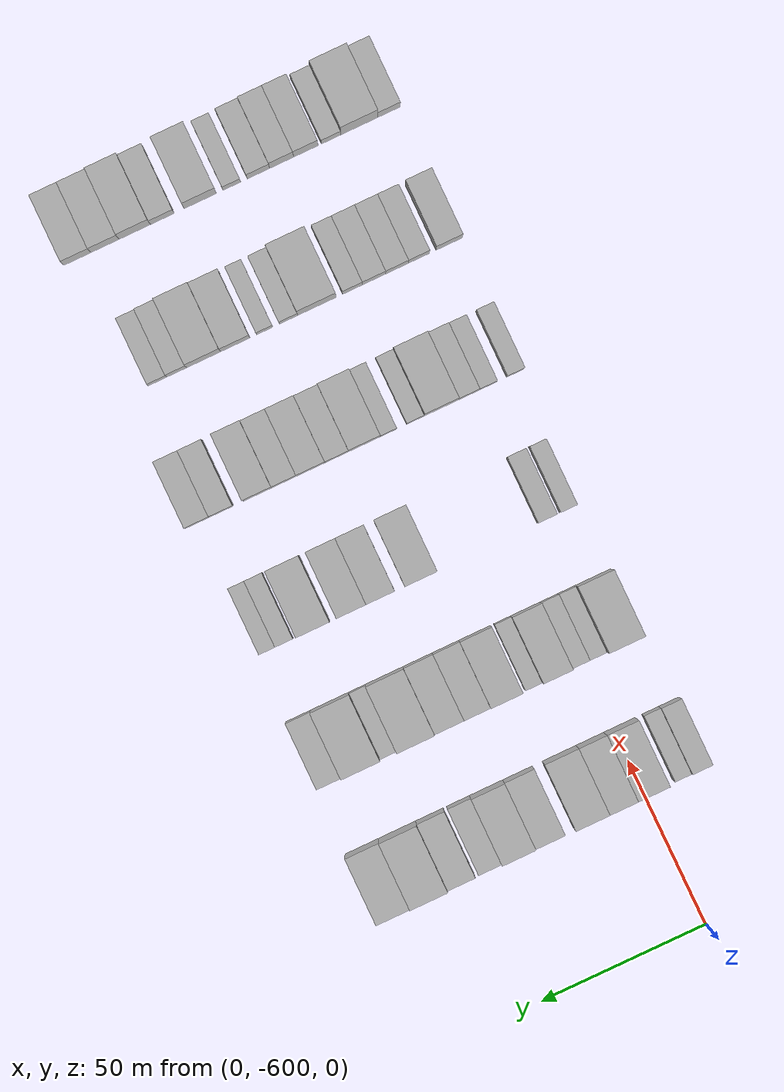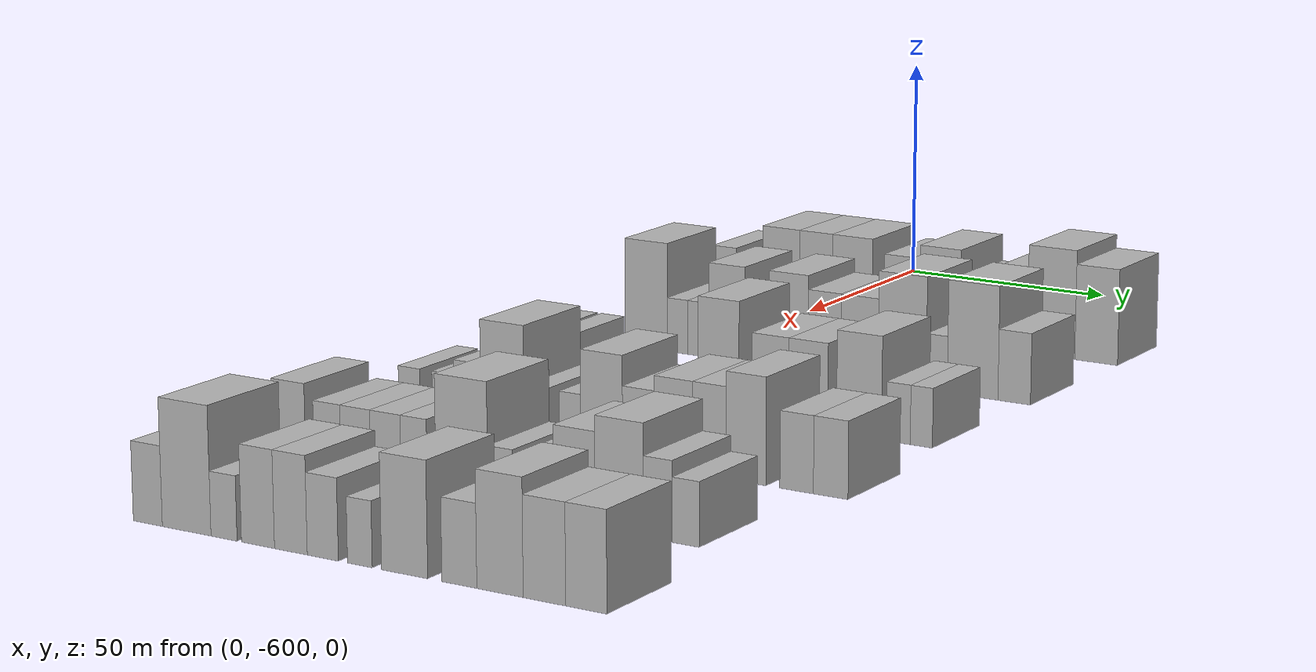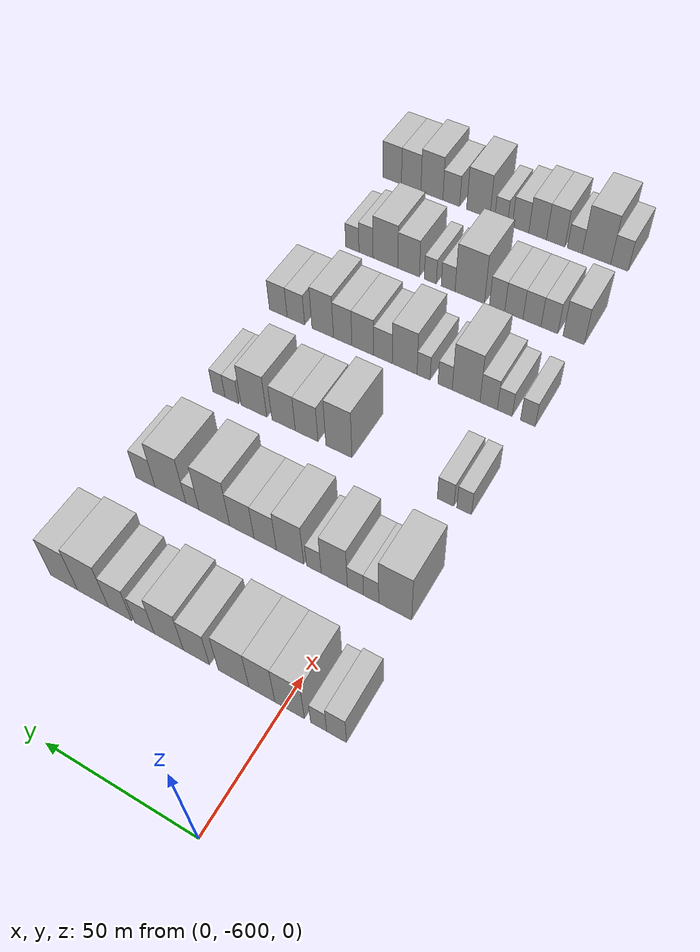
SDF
<sdf version="1.6">
 <world name="default">
  <model name="building_1">
   <static>1</static>
   <pose>50.0000 -616.9016 0 0.000000 0.000000 0.000000</pose>
   <link name="link">
    <pose>0 0 7.50 0 0 0</pose>
    <collision name="collision"><geometry><box><size>20.0000 6.1968 15.0000</size></box></geometry></collision>
    <visual name="visual">
     <cast_shadows>0</cast_shadows>
     <geometry><box><size>20.0000 6.1968 15.0000</size></box></geometry>
     <material>
      <script>
       <uri>model://HANNAS_wall/materials/scripts</uri>
       <uri>model://HANNAS_wall/materials/textures</uri>
       <name>vrc/HANNAS_wall</name>
      </script>
     </material>
    </visual>
   </link>
  </model>
  <model name="building_2">
   <static>1</static>
   <pose>50.0000 -611.2636 0 0.000000 0.000000 0.000000</pose>
   <link name="link">
    <pose>0 0 6.00 0 0 0</pose>
    <collision name="collision"><geometry><box><size>20.0000 5.0791 12.0000</size></box></geometry></collision>
    <visual name="visual">
     <cast_shadows>0</cast_shadows>
     <geometry><box><size>20.0000 5.0791 12.0000</size></box></geometry>
     <material>
      <script>
       <uri>model://HANNAS_wall/materials/scripts</uri>
       <uri>model://HANNAS_wall/materials/textures</uri>
       <name>vrc/HANNAS_wall</name>
      </script>
     </material>
    </visual>
   </link>
  </model>
  <model name="building_3">
   <static>1</static>
   <pose>50.0000 -601.9387 0 0.000000 0.000000 0.000000</pose>
   <link name="link">
    <pose>0 0 10.50 0 0 0</pose>
    <collision name="collision"><geometry><box><size>20.0000 9.5707 21.0000</size></box></geometry></collision>
    <visual name="visual">
     <cast_shadows>0</cast_shadows>
     <geometry><box><size>20.0000 9.5707 21.0000</size></box></geometry>
     <material>
      <script>
       <uri>model://HANNAS_wall/materials/scripts</uri>
       <uri>model://HANNAS_wall/materials/textures</uri>
       <name>vrc/HANNAS_wall</name>
      </script>
     </material>
    </visual>
   </link>
  </model>
  <model name="building_4">
   <static>1</static>
   <pose>50.0000 -592.8870 0 0.000000 0.000000 0.000000</pose>
   <link name="link">
    <pose>0 0 10.50 0 0 0</pose>
    <collision name="collision"><geometry><box><size>20.0000 8.5327 21.0000</size></box></geometry></collision>
    <visual name="visual">
     <cast_shadows>0</cast_shadows>
     <geometry><box><size>20.0000 8.5327 21.0000</size></box></geometry>
     <material>
      <script>
       <uri>model://HANNAS_wall/materials/scripts</uri>
       <uri>model://HANNAS_wall/materials/textures</uri>
       <name>vrc/HANNAS_wall</name>
      </script>
     </material>
    </visual>
   </link>
  </model>
  <model name="building_5">
   <static>1</static>
   <pose>50.0000 -583.4798 0 0.000000 0.000000 0.000000</pose>
   <link name="link">
    <pose>0 0 10.50 0 0 0</pose>
    <collision name="collision"><geometry><box><size>20.0000 10.2817 21.0000</size></box></geometry></collision>
    <visual name="visual">
     <cast_shadows>0</cast_shadows>
     <geometry><box><size>20.0000 10.2817 21.0000</size></box></geometry>
     <material>
      <script>
       <uri>model://HANNAS_wall/materials/scripts</uri>
       <uri>model://HANNAS_wall/materials/textures</uri>
       <name>vrc/HANNAS_wall</name>
      </script>
     </material>
    </visual>
   </link>
  </model>
  <model name="building_6">
   <static>1</static>
   <pose>50.0000 -570.8567 0 0.000000 0.000000 0.000000</pose>
   <link name="link">
    <pose>0 0 9.00 0 0 0</pose>
    <collision name="collision"><geometry><box><size>20.0000 8.9645 18.0000</size></box></geometry></collision>
    <visual name="visual">
     <cast_shadows>0</cast_shadows>
     <geometry><box><size>20.0000 8.9645 18.0000</size></box></geometry>
     <material>
      <script>
       <uri>model://HANNAS_wall/materials/scripts</uri>
       <uri>model://HANNAS_wall/materials/textures</uri>
       <name>vrc/HANNAS_wall</name>
      </script>
     </material>
    </visual>
   </link>
  </model>
  <model name="building_7">
   <static>1</static>
   <pose>50.0000 -561.2951 0 0.000000 0.000000 0.000000</pose>
   <link name="link">
    <pose>0 0 10.50 0 0 0</pose>
    <collision name="collision"><geometry><box><size>20.0000 10.1586 21.0000</size></box></geometry></collision>
    <visual name="visual">
     <cast_shadows>0</cast_shadows>
     <geometry><box><size>20.0000 10.1586 21.0000</size></box></geometry>
     <material>
      <script>
       <uri>model://HANNAS_wall/materials/scripts</uri>
       <uri>model://HANNAS_wall/materials/textures</uri>
       <name>vrc/HANNAS_wall</name>
      </script>
     </material>
    </visual>
   </link>
  </model>
  <model name="building_8">
   <static>1</static>
   <pose>50.0000 -552.7246 0 0.000000 0.000000 0.000000</pose>
   <link name="link">
    <pose>0 0 7.50 0 0 0</pose>
    <collision name="collision"><geometry><box><size>20.0000 6.9825 15.0000</size></box></geometry></collision>
    <visual name="visual">
     <cast_shadows>0</cast_shadows>
     <geometry><box><size>20.0000 6.9825 15.0000</size></box></geometry>
     <material>
      <script>
       <uri>model://HANNAS_wall/materials/scripts</uri>
       <uri>model://HANNAS_wall/materials/textures</uri>
       <name>vrc/HANNAS_wall</name>
      </script>
     </material>
    </visual>
   </link>
  </model>
  <model name="building_9">
   <static>1</static>
   <pose>50.0000 -544.0356 0 0.000000 0.000000 0.000000</pose>
   <link name="link">
    <pose>0 0 9.00 0 0 0</pose>
    <collision name="collision"><geometry><box><size>20.0000 8.3956 18.0000</size></box></geometry></collision>
    <visual name="visual">
     <cast_shadows>0</cast_shadows>
     <geometry><box><size>20.0000 8.3956 18.0000</size></box></geometry>
     <material>
      <script>
       <uri>model://HANNAS_wall/materials/scripts</uri>
       <uri>model://HANNAS_wall/materials/textures</uri>
       <name>vrc/HANNAS_wall</name>
      </script>
     </material>
    </visual>
   </link>
  </model>
  <model name="building_10">
   <static>1</static>
   <pose>50.0000 -534.1240 0 0.000000 0.000000 0.000000</pose>
   <link name="link">
    <pose>0 0 12.00 0 0 0</pose>
    <collision name="collision"><geometry><box><size>20.0000 11.4277 24.0000</size></box></geometry></collision>
    <visual name="visual">
     <cast_shadows>0</cast_shadows>
     <geometry><box><size>20.0000 11.4277 24.0000</size></box></geometry>
     <material>
      <script>
       <uri>model://HANNAS_wall/materials/scripts</uri>
       <uri>model://HANNAS_wall/materials/textures</uri>
       <name>vrc/HANNAS_wall</name>
      </script>
     </material>
    </visual>
   </link>
  </model>
  <model name="building_11">
   <static>1</static>
   <pose>50.0000 -523.3517 0 0.000000 0.000000 0.000000</pose>
   <link name="link">
    <pose>0 0 10.50 0 0 0</pose>
    <collision name="collision"><geometry><box><size>20.0000 10.1170 21.0000</size></box></geometry></collision>
    <visual name="visual">
     <cast_shadows>0</cast_shadows>
     <geometry><box><size>20.0000 10.1170 21.0000</size></box></geometry>
     <material>
      <script>
       <uri>model://HANNAS_wall/materials/scripts</uri>
       <uri>model://HANNAS_wall/materials/textures</uri>
       <name>vrc/HANNAS_wall</name>
      </script>
     </material>
    </visual>
   </link>
  </model>
  <model name="building_134">
   <static>1</static>
   <pose>90.0000 -612.5213 0 0.000000 0.000000 0.000000</pose>
   <link name="link">
    <pose>0 0 12.00 0 0 0</pose>
    <collision name="collision"><geometry><box><size>20.0000 10.9574 24.0000</size></box></geometry></collision>
    <visual name="visual">
     <cast_shadows>0</cast_shadows>
     <geometry><box><size>20.0000 10.9574 24.0000</size></box></geometry>
     <material>
      <script>
       <uri>model://HANNAS_wall/materials/scripts</uri>
       <uri>model://HANNAS_wall/materials/textures</uri>
       <name>vrc/HANNAS_wall</name>
      </script>
     </material>
    </visual>
   </link>
  </model>
  <model name="building_135">
   <static>1</static>
   <pose>90.0000 -604.4865 0 0.000000 0.000000 0.000000</pose>
   <link name="link">
    <pose>0 0 6.00 0 0 0</pose>
    <collision name="collision"><geometry><box><size>20.0000 5.1121 12.0000</size></box></geometry></collision>
    <visual name="visual">
     <cast_shadows>0</cast_shadows>
     <geometry><box><size>20.0000 5.1121 12.0000</size></box></geometry>
     <material>
      <script>
       <uri>model://HANNAS_wall/materials/scripts</uri>
       <uri>model://HANNAS_wall/materials/textures</uri>
       <name>vrc/HANNAS_wall</name>
      </script>
     </material>
    </visual>
   </link>
  </model>
  <model name="building_136">
   <static>1</static>
   <pose>90.0000 -599.1985 0 0.000000 0.000000 0.000000</pose>
   <link name="link">
    <pose>0 0 6.00 0 0 0</pose>
    <collision name="collision"><geometry><box><size>20.0000 5.4640 12.0000</size></box></geometry></collision>
    <visual name="visual">
     <cast_shadows>0</cast_shadows>
     <geometry><box><size>20.0000 5.4640 12.0000</size></box></geometry>
     <material>
      <script>
       <uri>model://HANNAS_wall/materials/scripts</uri>
       <uri>model://HANNAS_wall/materials/textures</uri>
       <name>vrc/HANNAS_wall</name>
      </script>
     </material>
    </visual>
   </link>
  </model>
  <model name="building_137">
   <static>1</static>
   <pose>90.0000 -591.9716 0 0.000000 0.000000 0.000000</pose>
   <link name="link">
    <pose>0 0 10.50 0 0 0</pose>
    <collision name="collision"><geometry><box><size>20.0000 8.9897 21.0000</size></box></geometry></collision>
    <visual name="visual">
     <cast_shadows>0</cast_shadows>
     <geometry><box><size>20.0000 8.9897 21.0000</size></box></geometry>
     <material>
      <script>
       <uri>model://HANNAS_wall/materials/scripts</uri>
       <uri>model://HANNAS_wall/materials/textures</uri>
       <name>vrc/HANNAS_wall</name>
      </script>
     </material>
    </visual>
   </link>
  </model>
  <model name="building_138">
   <static>1</static>
   <pose>90.0000 -584.9315 0 0.000000 0.000000 0.000000</pose>
   <link name="link">
    <pose>0 0 6.00 0 0 0</pose>
    <collision name="collision"><geometry><box><size>20.0000 5.0904 12.0000</size></box></geometry></collision>
    <visual name="visual">
     <cast_shadows>0</cast_shadows>
     <geometry><box><size>20.0000 5.0904 12.0000</size></box></geometry>
     <material>
      <script>
       <uri>model://HANNAS_wall/materials/scripts</uri>
       <uri>model://HANNAS_wall/materials/textures</uri>
       <name>vrc/HANNAS_wall</name>
      </script>
     </material>
    </visual>
   </link>
  </model>
  <model name="building_139">
   <static>1</static>
   <pose>90.0000 -576.5448 0 0.000000 0.000000 0.000000</pose>
   <link name="link">
    <pose>0 0 10.50 0 0 0</pose>
    <collision name="collision"><geometry><box><size>20.0000 9.6830 21.0000</size></box></geometry></collision>
    <visual name="visual">
     <cast_shadows>0</cast_shadows>
     <geometry><box><size>20.0000 9.6830 21.0000</size></box></geometry>
     <material>
      <script>
       <uri>model://HANNAS_wall/materials/scripts</uri>
       <uri>model://HANNAS_wall/materials/textures</uri>
       <name>vrc/HANNAS_wall</name>
      </script>
     </material>
    </visual>
   </link>
  </model>
  <model name="building_140">
   <static>1</static>
   <pose>90.0000 -567.6874 0 0.000000 0.000000 0.000000</pose>
   <link name="link">
    <pose>0 0 9.00 0 0 0</pose>
    <collision name="collision"><geometry><box><size>20.0000 8.0319 18.0000</size></box></geometry></collision>
    <visual name="visual">
     <cast_shadows>0</cast_shadows>
     <geometry><box><size>20.0000 8.0319 18.0000</size></box></geometry>
     <material>
      <script>
       <uri>model://HANNAS_wall/materials/scripts</uri>
       <uri>model://HANNAS_wall/materials/textures</uri>
       <name>vrc/HANNAS_wall</name>
      </script>
     </material>
    </visual>
   </link>
  </model>
  <model name="building_141">
   <static>1</static>
   <pose>90.0000 -559.2264 0 0.000000 0.000000 0.000000</pose>
   <link name="link">
    <pose>0 0 9.00 0 0 0</pose>
    <collision name="collision"><geometry><box><size>20.0000 8.8902 18.0000</size></box></geometry></collision>
    <visual name="visual">
     <cast_shadows>0</cast_shadows>
     <geometry><box><size>20.0000 8.8902 18.0000</size></box></geometry>
     <material>
      <script>
       <uri>model://HANNAS_wall/materials/scripts</uri>
       <uri>model://HANNAS_wall/materials/textures</uri>
       <name>vrc/HANNAS_wall</name>
      </script>
     </material>
    </visual>
   </link>
  </model>
  <model name="building_142">
   <static>1</static>
   <pose>90.0000 -549.0619 0 0.000000 0.000000 0.000000</pose>
   <link name="link">
    <pose>0 0 12.00 0 0 0</pose>
    <collision name="collision"><geometry><box><size>20.0000 11.4388 24.0000</size></box></geometry></collision>
    <visual name="visual">
     <cast_shadows>0</cast_shadows>
     <geometry><box><size>20.0000 11.4388 24.0000</size></box></geometry>
     <material>
      <script>
       <uri>model://HANNAS_wall/materials/scripts</uri>
       <uri>model://HANNAS_wall/materials/textures</uri>
       <name>vrc/HANNAS_wall</name>
      </script>
     </material>
    </visual>
   </link>
  </model>
  <model name="building_143">
   <static>1</static>
   <pose>90.0000 -540.8584 0 0.000000 0.000000 0.000000</pose>
   <link name="link">
    <pose>0 0 6.00 0 0 0</pose>
    <collision name="collision"><geometry><box><size>20.0000 4.9681 12.0000</size></box></geometry></collision>
    <visual name="visual">
     <cast_shadows>0</cast_shadows>
     <geometry><box><size>20.0000 4.9681 12.0000</size></box></geometry>
     <material>
      <script>
       <uri>model://HANNAS_wall/materials/scripts</uri>
       <uri>model://HANNAS_wall/materials/textures</uri>
       <name>vrc/HANNAS_wall</name>
      </script>
     </material>
    </visual>
   </link>
  </model>
  <model name="building_144">
   <static>1</static>
   <pose>90.0000 -532.4957 0 0.000000 0.000000 0.000000</pose>
   <link name="link">
    <pose>0 0 12.00 0 0 0</pose>
    <collision name="collision"><geometry><box><size>20.0000 11.7573 24.0000</size></box></geometry></collision>
    <visual name="visual">
     <cast_shadows>0</cast_shadows>
     <geometry><box><size>20.0000 11.7573 24.0000</size></box></geometry>
     <material>
      <script>
       <uri>model://HANNAS_wall/materials/scripts</uri>
       <uri>model://HANNAS_wall/materials/textures</uri>
       <name>vrc/HANNAS_wall</name>
      </script>
     </material>
    </visual>
   </link>
  </model>
  <model name="building_145">
   <static>1</static>
   <pose>90.0000 -522.8952 0 0.000000 0.000000 0.000000</pose>
   <link name="link">
    <pose>0 0 7.50 0 0 0</pose>
    <collision name="collision"><geometry><box><size>20.0000 7.4438 15.0000</size></box></geometry></collision>
    <visual name="visual">
     <cast_shadows>0</cast_shadows>
     <geometry><box><size>20.0000 7.4438 15.0000</size></box></geometry>
     <material>
      <script>
       <uri>model://HANNAS_wall/materials/scripts</uri>
       <uri>model://HANNAS_wall/materials/textures</uri>
       <name>vrc/HANNAS_wall</name>
      </script>
     </material>
    </visual>
   </link>
  </model>
  <model name="building_286">
   <static>1</static>
   <pose>130.0000 -614.4628 0 0.000000 0.000000 0.000000</pose>
   <link name="link">
    <pose>0 0 6.00 0 0 0</pose>
    <collision name="collision"><geometry><box><size>20.0000 5.0744 12.0000</size></box></geometry></collision>
    <visual name="visual">
     <cast_shadows>0</cast_shadows>
     <geometry><box><size>20.0000 5.0744 12.0000</size></box></geometry>
     <material>
      <script>
       <uri>model://HANNAS_wall/materials/scripts</uri>
       <uri>model://HANNAS_wall/materials/textures</uri>
       <name>vrc/HANNAS_wall</name>
      </script>
     </material>
    </visual>
   </link>
  </model>
  <model name="building_287">
   <static>1</static>
   <pose>130.0000 -608.0292 0 0.000000 0.000000 0.000000</pose>
   <link name="link">
    <pose>0 0 6.00 0 0 0</pose>
    <collision name="collision"><geometry><box><size>20.0000 5.7929 12.0000</size></box></geometry></collision>
    <visual name="visual">
     <cast_shadows>0</cast_shadows>
     <geometry><box><size>20.0000 5.7929 12.0000</size></box></geometry>
     <material>
      <script>
       <uri>model://HANNAS_wall/materials/scripts</uri>
       <uri>model://HANNAS_wall/materials/textures</uri>
       <name>vrc/HANNAS_wall</name>
      </script>
     </material>
    </visual>
   </link>
  </model>
  <model name="building_288">
   <static>1</static>
   <pose>130.0000 -569.5436 0 0.000000 0.000000 0.000000</pose>
   <link name="link">
    <pose>0 0 12.00 0 0 0</pose>
    <collision name="collision"><geometry><box><size>20.0000 9.7261 24.0000</size></box></geometry></collision>
    <visual name="visual">
     <cast_shadows>0</cast_shadows>
     <geometry><box><size>20.0000 9.7261 24.0000</size></box></geometry>
     <material>
      <script>
       <uri>model://HANNAS_wall/materials/scripts</uri>
       <uri>model://HANNAS_wall/materials/textures</uri>
       <name>vrc/HANNAS_wall</name>
      </script>
     </material>
    </visual>
   </link>
  </model>
  <model name="building_289">
   <static>1</static>
   <pose>130.0000 -557.3551 0 0.000000 0.000000 0.000000</pose>
   <link name="link">
    <pose>0 0 9.00 0 0 0</pose>
    <collision name="collision"><geometry><box><size>20.0000 8.6508 18.0000</size></box></geometry></collision>
    <visual name="visual">
     <cast_shadows>0</cast_shadows>
     <geometry><box><size>20.0000 8.6508 18.0000</size></box></geometry>
     <material>
      <script>
       <uri>model://HANNAS_wall/materials/scripts</uri>
       <uri>model://HANNAS_wall/materials/textures</uri>
       <name>vrc/HANNAS_wall</name>
      </script>
     </material>
    </visual>
   </link>
  </model>
  <model name="building_290">
   <static>1</static>
   <pose>130.0000 -548.5409 0 0.000000 0.000000 0.000000</pose>
   <link name="link">
    <pose>0 0 9.00 0 0 0</pose>
    <collision name="collision"><geometry><box><size>20.0000 8.9777 18.0000</size></box></geometry></collision>
    <visual name="visual">
     <cast_shadows>0</cast_shadows>
     <geometry><box><size>20.0000 8.9777 18.0000</size></box></geometry>
     <material>
      <script>
       <uri>model://HANNAS_wall/materials/scripts</uri>
       <uri>model://HANNAS_wall/materials/textures</uri>
       <name>vrc/HANNAS_wall</name>
      </script>
     </material>
    </visual>
   </link>
  </model>
  <model name="building_291">
   <static>1</static>
   <pose>130.0000 -536.9700 0 0.000000 0.000000 0.000000</pose>
   <link name="link">
    <pose>0 0 10.50 0 0 0</pose>
    <collision name="collision"><geometry><box><size>20.0000 10.1640 21.0000</size></box></geometry></collision>
    <visual name="visual">
     <cast_shadows>0</cast_shadows>
     <geometry><box><size>20.0000 10.1640 21.0000</size></box></geometry>
     <material>
      <script>
       <uri>model://HANNAS_wall/materials/scripts</uri>
       <uri>model://HANNAS_wall/materials/textures</uri>
       <name>vrc/HANNAS_wall</name>
      </script>
     </material>
    </visual>
   </link>
  </model>
  <model name="building_292">
   <static>1</static>
   <pose>130.0000 -528.1808 0 0.000000 0.000000 0.000000</pose>
   <link name="link">
    <pose>0 0 6.00 0 0 0</pose>
    <collision name="collision"><geometry><box><size>20.0000 5.4144 12.0000</size></box></geometry></collision>
    <visual name="visual">
     <cast_shadows>0</cast_shadows>
     <geometry><box><size>20.0000 5.4144 12.0000</size></box></geometry>
     <material>
      <script>
       <uri>model://HANNAS_wall/materials/scripts</uri>
       <uri>model://HANNAS_wall/materials/textures</uri>
       <name>vrc/HANNAS_wall</name>
      </script>
     </material>
    </visual>
   </link>
  </model>
  <model name="building_293">
   <static>1</static>
   <pose>130.0000 -523.0255 0 0.000000 0.000000 0.000000</pose>
   <link name="link">
    <pose>0 0 6.00 0 0 0</pose>
    <collision name="collision"><geometry><box><size>20.0000 4.8963 12.0000</size></box></geometry></collision>
    <visual name="visual">
     <cast_shadows>0</cast_shadows>
     <geometry><box><size>20.0000 4.8963 12.0000</size></box></geometry>
     <material>
      <script>
       <uri>model://HANNAS_wall/materials/scripts</uri>
       <uri>model://HANNAS_wall/materials/textures</uri>
       <name>vrc/HANNAS_wall</name>
      </script>
     </material>
    </visual>
   </link>
  </model>
  <model name="building_415">
   <static>1</static>
   <pose>170.0000 -617.3420 0 0.000000 0.000000 0.000000</pose>
   <link name="link">
    <pose>0 0 6.00 0 0 0</pose>
    <collision name="collision"><geometry><box><size>20.0000 5.3160 12.0000</size></box></geometry></collision>
    <visual name="visual">
     <cast_shadows>0</cast_shadows>
     <geometry><box><size>20.0000 5.3160 12.0000</size></box></geometry>
     <material>
      <script>
       <uri>model://HANNAS_wall/materials/scripts</uri>
       <uri>model://HANNAS_wall/materials/textures</uri>
       <name>vrc/HANNAS_wall</name>
      </script>
     </material>
    </visual>
   </link>
  </model>
  <model name="building_416">
   <static>1</static>
   <pose>170.0000 -608.9868 0 0.000000 0.000000 0.000000</pose>
   <link name="link">
    <pose>0 0 6.00 0 0 0</pose>
    <collision name="collision"><geometry><box><size>20.0000 5.3945 12.0000</size></box></geometry></collision>
    <visual name="visual">
     <cast_shadows>0</cast_shadows>
     <geometry><box><size>20.0000 5.3945 12.0000</size></box></geometry>
     <material>
      <script>
       <uri>model://HANNAS_wall/materials/scripts</uri>
       <uri>model://HANNAS_wall/materials/textures</uri>
       <name>vrc/HANNAS_wall</name>
      </script>
     </material>
    </visual>
   </link>
  </model>
  <model name="building_417">
   <static>1</static>
   <pose>170.0000 -603.0850 0 0.000000 0.000000 0.000000</pose>
   <link name="link">
    <pose>0 0 7.50 0 0 0</pose>
    <collision name="collision"><geometry><box><size>20.0000 6.4092 15.0000</size></box></geometry></collision>
    <visual name="visual">
     <cast_shadows>0</cast_shadows>
     <geometry><box><size>20.0000 6.4092 15.0000</size></box></geometry>
     <material>
      <script>
       <uri>model://HANNAS_wall/materials/scripts</uri>
       <uri>model://HANNAS_wall/materials/textures</uri>
       <name>vrc/HANNAS_wall</name>
      </script>
     </material>
    </visual>
   </link>
  </model>
  <model name="building_418">
   <static>1</static>
   <pose>170.0000 -594.6996 0 0.000000 0.000000 0.000000</pose>
   <link name="link">
    <pose>0 0 12.00 0 0 0</pose>
    <collision name="collision"><geometry><box><size>20.0000 10.3617 24.0000</size></box></geometry></collision>
    <visual name="visual">
     <cast_shadows>0</cast_shadows>
     <geometry><box><size>20.0000 10.3617 24.0000</size></box></geometry>
     <material>
      <script>
       <uri>model://HANNAS_wall/materials/scripts</uri>
       <uri>model://HANNAS_wall/materials/textures</uri>
       <name>vrc/HANNAS_wall</name>
      </script>
     </material>
    </visual>
   </link>
  </model>
  <model name="building_419">
   <static>1</static>
   <pose>170.0000 -586.8548 0 0.000000 0.000000 0.000000</pose>
   <link name="link">
    <pose>0 0 6.00 0 0 0</pose>
    <collision name="collision"><geometry><box><size>20.0000 5.3279 12.0000</size></box></geometry></collision>
    <visual name="visual">
     <cast_shadows>0</cast_shadows>
     <geometry><box><size>20.0000 5.3279 12.0000</size></box></geometry>
     <material>
      <script>
       <uri>model://HANNAS_wall/materials/scripts</uri>
       <uri>model://HANNAS_wall/materials/textures</uri>
       <name>vrc/HANNAS_wall</name>
      </script>
     </material>
    </visual>
   </link>
  </model>
  <model name="building_420">
   <static>1</static>
   <pose>170.0000 -578.6938 0 0.000000 0.000000 0.000000</pose>
   <link name="link">
    <pose>0 0 6.00 0 0 0</pose>
    <collision name="collision"><geometry><box><size>20.0000 4.9941 12.0000</size></box></geometry></collision>
    <visual name="visual">
     <cast_shadows>0</cast_shadows>
     <geometry><box><size>20.0000 4.9941 12.0000</size></box></geometry>
     <material>
      <script>
       <uri>model://HANNAS_wall/materials/scripts</uri>
       <uri>model://HANNAS_wall/materials/textures</uri>
       <name>vrc/HANNAS_wall</name>
      </script>
     </material>
    </visual>
   </link>
  </model>
  <model name="building_421">
   <static>1</static>
   <pose>170.0000 -571.3934 0 0.000000 0.000000 0.000000</pose>
   <link name="link">
    <pose>0 0 10.50 0 0 0</pose>
    <collision name="collision"><geometry><box><size>20.0000 9.6065 21.0000</size></box></geometry></collision>
    <visual name="visual">
     <cast_shadows>0</cast_shadows>
     <geometry><box><size>20.0000 9.6065 21.0000</size></box></geometry>
     <material>
      <script>
       <uri>model://HANNAS_wall/materials/scripts</uri>
       <uri>model://HANNAS_wall/materials/textures</uri>
       <name>vrc/HANNAS_wall</name>
      </script>
     </material>
    </visual>
   </link>
  </model>
  <model name="building_422">
   <static>1</static>
   <pose>170.0000 -562.9889 0 0.000000 0.000000 0.000000</pose>
   <link name="link">
    <pose>0 0 7.50 0 0 0</pose>
    <collision name="collision"><geometry><box><size>20.0000 7.2025 15.0000</size></box></geometry></collision>
    <visual name="visual">
     <cast_shadows>0</cast_shadows>
     <geometry><box><size>20.0000 7.2025 15.0000</size></box></geometry>
     <material>
      <script>
       <uri>model://HANNAS_wall/materials/scripts</uri>
       <uri>model://HANNAS_wall/materials/textures</uri>
       <name>vrc/HANNAS_wall</name>
      </script>
     </material>
    </visual>
   </link>
  </model>
  <model name="building_423">
   <static>1</static>
   <pose>170.0000 -555.0589 0 0.000000 0.000000 0.000000</pose>
   <link name="link">
    <pose>0 0 9.00 0 0 0</pose>
    <collision name="collision"><geometry><box><size>20.0000 8.6576 18.0000</size></box></geometry></collision>
    <visual name="visual">
     <cast_shadows>0</cast_shadows>
     <geometry><box><size>20.0000 8.6576 18.0000</size></box></geometry>
     <material>
      <script>
       <uri>model://HANNAS_wall/materials/scripts</uri>
       <uri>model://HANNAS_wall/materials/textures</uri>
       <name>vrc/HANNAS_wall</name>
      </script>
     </material>
    </visual>
   </link>
  </model>
  <model name="building_424">
   <static>1</static>
   <pose>170.0000 -547.0190 0 0.000000 0.000000 0.000000</pose>
   <link name="link">
    <pose>0 0 9.00 0 0 0</pose>
    <collision name="collision"><geometry><box><size>20.0000 7.4223 18.0000</size></box></geometry></collision>
    <visual name="visual">
     <cast_shadows>0</cast_shadows>
     <geometry><box><size>20.0000 7.4223 18.0000</size></box></geometry>
     <material>
      <script>
       <uri>model://HANNAS_wall/materials/scripts</uri>
       <uri>model://HANNAS_wall/materials/textures</uri>
       <name>vrc/HANNAS_wall</name>
      </script>
     </material>
    </visual>
   </link>
  </model>
  <model name="building_425">
   <static>1</static>
   <pose>170.0000 -538.9206 0 0.000000 0.000000 0.000000</pose>
   <link name="link">
    <pose>0 0 10.50 0 0 0</pose>
    <collision name="collision"><geometry><box><size>20.0000 8.7744 21.0000</size></box></geometry></collision>
    <visual name="visual">
     <cast_shadows>0</cast_shadows>
     <geometry><box><size>20.0000 8.7744 21.0000</size></box></geometry>
     <material>
      <script>
       <uri>model://HANNAS_wall/materials/scripts</uri>
       <uri>model://HANNAS_wall/materials/textures</uri>
       <name>vrc/HANNAS_wall</name>
      </script>
     </material>
    </visual>
   </link>
  </model>
  <model name="building_426">
   <static>1</static>
   <pose>170.0000 -527.9152 0 0.000000 0.000000 0.000000</pose>
   <link name="link">
    <pose>0 0 7.50 0 0 0</pose>
    <collision name="collision"><geometry><box><size>20.0000 7.2365 15.0000</size></box></geometry></collision>
    <visual name="visual">
     <cast_shadows>0</cast_shadows>
     <geometry><box><size>20.0000 7.2365 15.0000</size></box></geometry>
     <material>
      <script>
       <uri>model://HANNAS_wall/materials/scripts</uri>
       <uri>model://HANNAS_wall/materials/textures</uri>
       <name>vrc/HANNAS_wall</name>
      </script>
     </material>
    </visual>
   </link>
  </model>
  <model name="building_427">
   <static>1</static>
   <pose>170.0000 -520.6086 0 0.000000 0.000000 0.000000</pose>
   <link name="link">
    <pose>0 0 7.50 0 0 0</pose>
    <collision name="collision"><geometry><box><size>20.0000 7.3767 15.0000</size></box></geometry></collision>
    <visual name="visual">
     <cast_shadows>0</cast_shadows>
     <geometry><box><size>20.0000 7.3767 15.0000</size></box></geometry>
     <material>
      <script>
       <uri>model://HANNAS_wall/materials/scripts</uri>
       <uri>model://HANNAS_wall/materials/textures</uri>
       <name>vrc/HANNAS_wall</name>
      </script>
     </material>
    </visual>
   </link>
  </model>
  <model name="building_546">
   <static>1</static>
   <pose>210.0000 -616.0182 0 0.000000 0.000000 0.000000</pose>
   <link name="link">
    <pose>0 0 9.00 0 0 0</pose>
    <collision name="collision"><geometry><box><size>20.0000 7.9637 18.0000</size></box></geometry></collision>
    <visual name="visual">
     <cast_shadows>0</cast_shadows>
     <geometry><box><size>20.0000 7.9637 18.0000</size></box></geometry>
     <material>
      <script>
       <uri>model://HANNAS_wall/materials/scripts</uri>
       <uri>model://HANNAS_wall/materials/textures</uri>
       <name>vrc/HANNAS_wall</name>
      </script>
     </material>
    </visual>
   </link>
  </model>
  <model name="building_547">
   <static>1</static>
   <pose>210.0000 -606.8409 0 0.000000 0.000000 0.000000</pose>
   <link name="link">
    <pose>0 0 7.50 0 0 0</pose>
    <collision name="collision"><geometry><box><size>20.0000 6.3908 15.0000</size></box></geometry></collision>
    <visual name="visual">
     <cast_shadows>0</cast_shadows>
     <geometry><box><size>20.0000 6.3908 15.0000</size></box></geometry>
     <material>
      <script>
       <uri>model://HANNAS_wall/materials/scripts</uri>
       <uri>model://HANNAS_wall/materials/textures</uri>
       <name>vrc/HANNAS_wall</name>
      </script>
     </material>
    </visual>
   </link>
  </model>
  <model name="building_548">
   <static>1</static>
   <pose>210.0000 -600.1786 0 0.000000 0.000000 0.000000</pose>
   <link name="link">
    <pose>0 0 7.50 0 0 0</pose>
    <collision name="collision"><geometry><box><size>20.0000 6.9340 15.0000</size></box></geometry></collision>
    <visual name="visual">
     <cast_shadows>0</cast_shadows>
     <geometry><box><size>20.0000 6.9340 15.0000</size></box></geometry>
     <material>
      <script>
       <uri>model://HANNAS_wall/materials/scripts</uri>
       <uri>model://HANNAS_wall/materials/textures</uri>
       <name>vrc/HANNAS_wall</name>
      </script>
     </material>
    </visual>
   </link>
  </model>
  <model name="building_549">
   <static>1</static>
   <pose>210.0000 -593.1725 0 0.000000 0.000000 0.000000</pose>
   <link name="link">
    <pose>0 0 7.50 0 0 0</pose>
    <collision name="collision"><geometry><box><size>20.0000 7.0781 15.0000</size></box></geometry></collision>
    <visual name="visual">
     <cast_shadows>0</cast_shadows>
     <geometry><box><size>20.0000 7.0781 15.0000</size></box></geometry>
     <material>
      <script>
       <uri>model://HANNAS_wall/materials/scripts</uri>
       <uri>model://HANNAS_wall/materials/textures</uri>
       <name>vrc/HANNAS_wall</name>
      </script>
     </material>
    </visual>
   </link>
  </model>
  <model name="building_550">
   <static>1</static>
   <pose>210.0000 -586.6227 0 0.000000 0.000000 0.000000</pose>
   <link name="link">
    <pose>0 0 7.50 0 0 0</pose>
    <collision name="collision"><geometry><box><size>20.0000 6.0215 15.0000</size></box></geometry></collision>
    <visual name="visual">
     <cast_shadows>0</cast_shadows>
     <geometry><box><size>20.0000 6.0215 15.0000</size></box></geometry>
     <material>
      <script>
       <uri>model://HANNAS_wall/materials/scripts</uri>
       <uri>model://HANNAS_wall/materials/textures</uri>
       <name>vrc/HANNAS_wall</name>
      </script>
     </material>
    </visual>
   </link>
  </model>
  <model name="building_551">
   <static>1</static>
   <pose>210.0000 -575.7562 0 0.000000 0.000000 0.000000</pose>
   <link name="link">
    <pose>0 0 12.00 0 0 0</pose>
    <collision name="collision"><geometry><box><size>20.0000 11.7117 24.0000</size></box></geometry></collision>
    <visual name="visual">
     <cast_shadows>0</cast_shadows>
     <geometry><box><size>20.0000 11.7117 24.0000</size></box></geometry>
     <material>
      <script>
       <uri>model://HANNAS_wall/materials/scripts</uri>
       <uri>model://HANNAS_wall/materials/textures</uri>
       <name>vrc/HANNAS_wall</name>
      </script>
     </material>
    </visual>
   </link>
  </model>
  <model name="building_552">
   <static>1</static>
   <pose>210.0000 -567.1115 0 0.000000 0.000000 0.000000</pose>
   <link name="link">
    <pose>0 0 6.00 0 0 0</pose>
    <collision name="collision"><geometry><box><size>20.0000 5.5776 12.0000</size></box></geometry></collision>
    <visual name="visual">
     <cast_shadows>0</cast_shadows>
     <geometry><box><size>20.0000 5.5776 12.0000</size></box></geometry>
     <material>
      <script>
       <uri>model://HANNAS_wall/materials/scripts</uri>
       <uri>model://HANNAS_wall/materials/textures</uri>
       <name>vrc/HANNAS_wall</name>
      </script>
     </material>
    </visual>
   </link>
  </model>
  <model name="building_553">
   <static>1</static>
   <pose>210.0000 -559.8629 0 0.000000 0.000000 0.000000</pose>
   <link name="link">
    <pose>0 0 6.00 0 0 0</pose>
    <collision name="collision"><geometry><box><size>20.0000 4.9197 12.0000</size></box></geometry></collision>
    <visual name="visual">
     <cast_shadows>0</cast_shadows>
     <geometry><box><size>20.0000 4.9197 12.0000</size></box></geometry>
     <material>
      <script>
       <uri>model://HANNAS_wall/materials/scripts</uri>
       <uri>model://HANNAS_wall/materials/textures</uri>
       <name>vrc/HANNAS_wall</name>
      </script>
     </material>
    </visual>
   </link>
  </model>
  <model name="building_554">
   <static>1</static>
   <pose>210.0000 -550.9324 0 0.000000 0.000000 0.000000</pose>
   <link name="link">
    <pose>0 0 9.00 0 0 0</pose>
    <collision name="collision"><geometry><box><size>20.0000 8.9413 18.0000</size></box></geometry></collision>
    <visual name="visual">
     <cast_shadows>0</cast_shadows>
     <geometry><box><size>20.0000 8.9413 18.0000</size></box></geometry>
     <material>
      <script>
       <uri>model://HANNAS_wall/materials/scripts</uri>
       <uri>model://HANNAS_wall/materials/textures</uri>
       <name>vrc/HANNAS_wall</name>
      </script>
     </material>
    </visual>
   </link>
  </model>
  <model name="building_555">
   <static>1</static>
   <pose>210.0000 -541.2759 0 0.000000 0.000000 0.000000</pose>
   <link name="link">
    <pose>0 0 10.50 0 0 0</pose>
    <collision name="collision"><geometry><box><size>20.0000 10.3715 21.0000</size></box></geometry></collision>
    <visual name="visual">
     <cast_shadows>0</cast_shadows>
     <geometry><box><size>20.0000 10.3715 21.0000</size></box></geometry>
     <material>
      <script>
       <uri>model://HANNAS_wall/materials/scripts</uri>
       <uri>model://HANNAS_wall/materials/textures</uri>
       <name>vrc/HANNAS_wall</name>
      </script>
     </material>
    </visual>
   </link>
  </model>
  <model name="building_556">
   <static>1</static>
   <pose>210.0000 -533.0803 0 0.000000 0.000000 0.000000</pose>
   <link name="link">
    <pose>0 0 7.50 0 0 0</pose>
    <collision name="collision"><geometry><box><size>20.0000 6.0197 15.0000</size></box></geometry></collision>
    <visual name="visual">
     <cast_shadows>0</cast_shadows>
     <geometry><box><size>20.0000 6.0197 15.0000</size></box></geometry>
     <material>
      <script>
       <uri>model://HANNAS_wall/materials/scripts</uri>
       <uri>model://HANNAS_wall/materials/textures</uri>
       <name>vrc/HANNAS_wall</name>
      </script>
     </material>
    </visual>
   </link>
  </model>
  <model name="building_557">
   <static>1</static>
   <pose>210.0000 -527.2377 0 0.000000 0.000000 0.000000</pose>
   <link name="link">
    <pose>0 0 6.00 0 0 0</pose>
    <collision name="collision"><geometry><box><size>20.0000 5.6655 12.0000</size></box></geometry></collision>
    <visual name="visual">
     <cast_shadows>0</cast_shadows>
     <geometry><box><size>20.0000 5.6655 12.0000</size></box></geometry>
     <material>
      <script>
       <uri>model://HANNAS_wall/materials/scripts</uri>
       <uri>model://HANNAS_wall/materials/textures</uri>
       <name>vrc/HANNAS_wall</name>
      </script>
     </material>
    </visual>
   </link>
  </model>
  <model name="building_680">
   <static>1</static>
   <pose>250.0000 -616.5975 0 0.000000 0.000000 0.000000</pose>
   <link name="link">
    <pose>0 0 7.50 0 0 0</pose>
    <collision name="collision"><geometry><box><size>20.0000 6.8050 15.0000</size></box></geometry></collision>
    <visual name="visual">
     <cast_shadows>0</cast_shadows>
     <geometry><box><size>20.0000 6.8050 15.0000</size></box></geometry>
     <material>
      <script>
       <uri>model://HANNAS_wall/materials/scripts</uri>
       <uri>model://HANNAS_wall/materials/textures</uri>
       <name>vrc/HANNAS_wall</name>
      </script>
     </material>
    </visual>
   </link>
  </model>
  <model name="building_681">
   <static>1</static>
   <pose>250.0000 -607.5562 0 0.000000 0.000000 0.000000</pose>
   <link name="link">
    <pose>0 0 12.00 0 0 0</pose>
    <collision name="collision"><geometry><box><size>20.0000 11.2776 24.0000</size></box></geometry></collision>
    <visual name="visual">
     <cast_shadows>0</cast_shadows>
     <geometry><box><size>20.0000 11.2776 24.0000</size></box></geometry>
     <material>
      <script>
       <uri>model://HANNAS_wall/materials/scripts</uri>
       <uri>model://HANNAS_wall/materials/textures</uri>
       <name>vrc/HANNAS_wall</name>
      </script>
     </material>
    </visual>
   </link>
  </model>
  <model name="building_682">
   <static>1</static>
   <pose>250.0000 -598.9430 0 0.000000 0.000000 0.000000</pose>
   <link name="link">
    <pose>0 0 6.00 0 0 0</pose>
    <collision name="collision"><geometry><box><size>20.0000 5.9488 12.0000</size></box></geometry></collision>
    <visual name="visual">
     <cast_shadows>0</cast_shadows>
     <geometry><box><size>20.0000 5.9488 12.0000</size></box></geometry>
     <material>
      <script>
       <uri>model://HANNAS_wall/materials/scripts</uri>
       <uri>model://HANNAS_wall/materials/textures</uri>
       <name>vrc/HANNAS_wall</name>
      </script>
     </material>
    </visual>
   </link>
  </model>
  <model name="building_683">
   <static>1</static>
   <pose>250.0000 -591.2489 0 0.000000 0.000000 0.000000</pose>
   <link name="link">
    <pose>0 0 9.00 0 0 0</pose>
    <collision name="collision"><geometry><box><size>20.0000 7.4394 18.0000</size></box></geometry></collision>
    <visual name="visual">
     <cast_shadows>0</cast_shadows>
     <geometry><box><size>20.0000 7.4394 18.0000</size></box></geometry>
     <material>
      <script>
       <uri>model://HANNAS_wall/materials/scripts</uri>
       <uri>model://HANNAS_wall/materials/textures</uri>
       <name>vrc/HANNAS_wall</name>
      </script>
     </material>
    </visual>
   </link>
  </model>
  <model name="building_684">
   <static>1</static>
   <pose>250.0000 -583.8803 0 0.000000 0.000000 0.000000</pose>
   <link name="link">
    <pose>0 0 9.00 0 0 0</pose>
    <collision name="collision"><geometry><box><size>20.0000 7.2977 18.0000</size></box></geometry></collision>
    <visual name="visual">
     <cast_shadows>0</cast_shadows>
     <geometry><box><size>20.0000 7.2977 18.0000</size></box></geometry>
     <material>
      <script>
       <uri>model://HANNAS_wall/materials/scripts</uri>
       <uri>model://HANNAS_wall/materials/textures</uri>
       <name>vrc/HANNAS_wall</name>
      </script>
     </material>
    </visual>
   </link>
  </model>
  <model name="building_685">
   <static>1</static>
   <pose>250.0000 -576.8163 0 0.000000 0.000000 0.000000</pose>
   <link name="link">
    <pose>0 0 7.50 0 0 0</pose>
    <collision name="collision"><geometry><box><size>20.0000 6.8302 15.0000</size></box></geometry></collision>
    <visual name="visual">
     <cast_shadows>0</cast_shadows>
     <geometry><box><size>20.0000 6.8302 15.0000</size></box></geometry>
     <material>
      <script>
       <uri>model://HANNAS_wall/materials/scripts</uri>
       <uri>model://HANNAS_wall/materials/textures</uri>
       <name>vrc/HANNAS_wall</name>
      </script>
     </material>
    </visual>
   </link>
  </model>
  <model name="building_686">
   <static>1</static>
   <pose>250.0000 -568.7155 0 0.000000 0.000000 0.000000</pose>
   <link name="link">
    <pose>0 0 6.00 0 0 0</pose>
    <collision name="collision"><geometry><box><size>20.0000 5.3715 12.0000</size></box></geometry></collision>
    <visual name="visual">
     <cast_shadows>0</cast_shadows>
     <geometry><box><size>20.0000 5.3715 12.0000</size></box></geometry>
     <material>
      <script>
       <uri>model://HANNAS_wall/materials/scripts</uri>
       <uri>model://HANNAS_wall/materials/textures</uri>
       <name>vrc/HANNAS_wall</name>
      </script>
     </material>
    </visual>
   </link>
  </model>
  <model name="building_687">
   <static>1</static>
   <pose>250.0000 -559.1120 0 0.000000 0.000000 0.000000</pose>
   <link name="link">
    <pose>0 0 10.50 0 0 0</pose>
    <collision name="collision"><geometry><box><size>20.0000 9.8356 21.0000</size></box></geometry></collision>
    <visual name="visual">
     <cast_shadows>0</cast_shadows>
     <geometry><box><size>20.0000 9.8356 21.0000</size></box></geometry>
     <material>
      <script>
       <uri>model://HANNAS_wall/materials/scripts</uri>
       <uri>model://HANNAS_wall/materials/textures</uri>
       <name>vrc/HANNAS_wall</name>
      </script>
     </material>
    </visual>
   </link>
  </model>
  <model name="building_688">
   <static>1</static>
   <pose>250.0000 -547.5562 0 0.000000 0.000000 0.000000</pose>
   <link name="link">
    <pose>0 0 7.50 0 0 0</pose>
    <collision name="collision"><geometry><box><size>20.0000 7.2759 15.0000</size></box></geometry></collision>
    <visual name="visual">
     <cast_shadows>0</cast_shadows>
     <geometry><box><size>20.0000 7.2759 15.0000</size></box></geometry>
     <material>
      <script>
       <uri>model://HANNAS_wall/materials/scripts</uri>
       <uri>model://HANNAS_wall/materials/textures</uri>
       <name>vrc/HANNAS_wall</name>
      </script>
     </material>
    </visual>
   </link>
  </model>
  <model name="building_689">
   <static>1</static>
   <pose>250.0000 -539.1456 0 0.000000 0.000000 0.000000</pose>
   <link name="link">
    <pose>0 0 10.50 0 0 0</pose>
    <collision name="collision"><geometry><box><size>20.0000 9.5452 21.0000</size></box></geometry></collision>
    <visual name="visual">
     <cast_shadows>0</cast_shadows>
     <geometry><box><size>20.0000 9.5452 21.0000</size></box></geometry>
     <material>
      <script>
       <uri>model://HANNAS_wall/materials/scripts</uri>
       <uri>model://HANNAS_wall/materials/textures</uri>
       <name>vrc/HANNAS_wall</name>
      </script>
     </material>
    </visual>
   </link>
  </model>
  <model name="building_690">
   <static>1</static>
   <pose>250.0000 -530.0743 0 0.000000 0.000000 0.000000</pose>
   <link name="link">
    <pose>0 0 9.00 0 0 0</pose>
    <collision name="collision"><geometry><box><size>20.0000 8.5972 18.0000</size></box></geometry></collision>
    <visual name="visual">
     <cast_shadows>0</cast_shadows>
     <geometry><box><size>20.0000 8.5972 18.0000</size></box></geometry>
     <material>
      <script>
       <uri>model://HANNAS_wall/materials/scripts</uri>
       <uri>model://HANNAS_wall/materials/textures</uri>
       <name>vrc/HANNAS_wall</name>
      </script>
     </material>
    </visual>
   </link>
  </model>
  <model name="building_691">
   <static>1</static>
   <pose>250.0000 -521.6656 0 0.000000 0.000000 0.000000</pose>
   <link name="link">
    <pose>0 0 9.00 0 0 0</pose>
    <collision name="collision"><geometry><box><size>20.0000 8.2203 18.0000</size></box></geometry></collision>
    <visual name="visual">
     <cast_shadows>0</cast_shadows>
     <geometry><box><size>20.0000 8.2203 18.0000</size></box></geometry>
     <material>
      <script>
       <uri>model://HANNAS_wall/materials/scripts</uri>
       <uri>model://HANNAS_wall/materials/textures</uri>
       <name>vrc/HANNAS_wall</name>
      </script>
     </material>
    </visual>
   </link>
  </model>
 </world>
</sdf>
